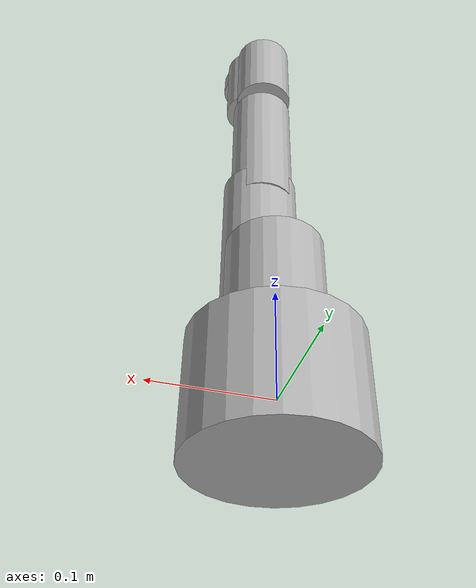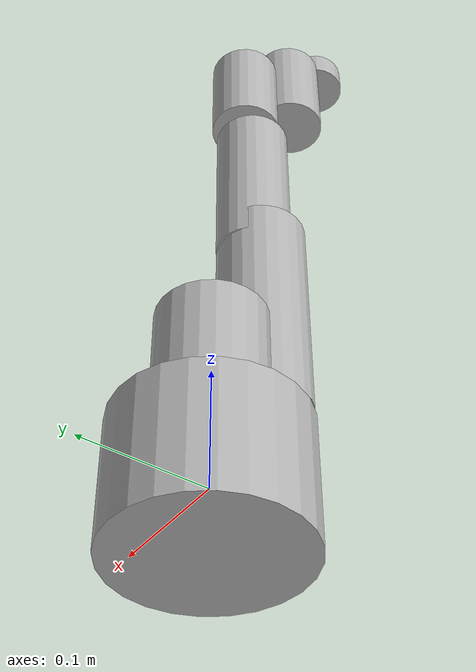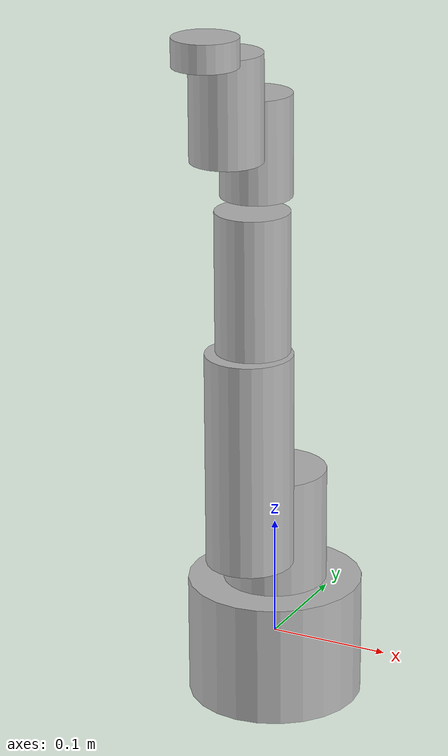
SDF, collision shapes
<sdf version='1.7'>
  <model name='firefighter'>
    <link name='base'>
      <inertial>
        <pose>0 0 0 0 -0 0</pose>
        <mass>1</mass>
        <inertia>
          <ixx>1</ixx>
          <ixy>0</ixy>
          <ixz>0</ixz>
          <iyy>1</iyy>
          <iyz>0</iyz>
          <izz>1</izz>
        </inertia>
      </inertial>
      <collision name='base_collision'>
        <pose>0 0 0 0 -0 1.5708</pose>
        <geometry>
          <cylinder>
            <length>0.102</length>
            <radius>0.0725</radius>
          </cylinder>
        </geometry>
      </collision>
      <visual name='base_visual'>
        <pose>0 0 0 0 -0 1.5708</pose>
        <geometry>
          <mesh>
            <scale>1 1 1</scale>
            <uri>model://mycobot_description/urdf/mycobot_320_pi_2022/base.dae</uri>
          </mesh>
        </geometry>
      </visual>
    </link>
    <joint name='joint2_to_joint1' type='revolute'>
      <pose relative_to='base'>0 0 0.173 0 -0 0</pose>
      <parent>base</parent>
      <child>link1</child>
      <axis>
        <xyz>0 0 1</xyz>
        <limit>
          <lower>-2.96</lower>
          <upper>2.96</upper>
          <effort>1000</effort>
          <velocity>0</velocity>
        </limit>
        <dynamics>
          <spring_reference>0</spring_reference>
          <spring_stiffness>0</spring_stiffness>
        </dynamics>
      </axis>
    </joint>
    <link name='link1'>
      <pose relative_to='joint2_to_joint1'>0 0 0 0 -0 0</pose>
      <inertial>
        <pose>0 0 0 0 -0 0</pose>
        <mass>1</mass>
        <inertia>
          <ixx>1</ixx>
          <ixy>0</ixy>
          <ixz>0</ixz>
          <iyy>1</iyy>
          <iyz>0</iyz>
          <izz>1</izz>
        </inertia>
      </inertial>
      <collision name='link1_collision'>
        <pose>0 0 -0.078 0 -0 1.5708</pose>
        <geometry>
          <cylinder>
            <length>0.106</length>
            <radius>0.043</radius>
          </cylinder>
        </geometry>
      </collision>
      <visual name='link1_visual'>
        <pose>0 0 -0.078 0 -0 1.5708</pose>
        <geometry>
          <mesh>
            <scale>1 1 1</scale>
            <uri>model://mycobot_description/urdf/mycobot_320_pi_2022/link1.dae</uri>
          </mesh>
        </geometry>
      </visual>
    </link>
    <joint name='joint3_to_joint2' type='revolute'>
      <pose relative_to='link1'>0 -0.086 0 -3.14159 -1.57079 -1.57079</pose>
      <parent>link1</parent>
      <child>link2</child>
      <axis>
        <xyz>0 0 1</xyz>
        <limit>
          <lower>-2.79</lower>
          <upper>2.79</upper>
          <effort>1000</effort>
          <velocity>0</velocity>
        </limit>
        <dynamics>
          <spring_reference>0</spring_reference>
          <spring_stiffness>0</spring_stiffness>
        </dynamics>
      </axis>
    </joint>
    <link name='link2'>
      <pose relative_to='joint3_to_joint2'>0 0 0 0 -0 0</pose>
      <inertial>
        <pose>0 0 0 0 -0 0</pose>
        <mass>1</mass>
        <inertia>
          <ixx>1</ixx>
          <ixy>0</ixy>
          <ixz>0</ixz>
          <iyy>1</iyy>
          <iyz>0</iyz>
          <izz>1</izz>
        </inertia>
      </inertial>
      <collision name='link2_collision'>
        <pose>0 0 -0.04 0 1.5708 0</pose>
        <geometry>
          <cylinder>
            <length>0.18</length>
            <radius>0.036</radius>
          </cylinder>
        </geometry>
      </collision>
      <visual name='link2_visual'>
        <pose>0 0 -0.04 0 1.5708 0</pose>
        <geometry>
          <mesh>
            <scale>1 1 1</scale>
            <uri>model://mycobot_description/urdf/mycobot_320_pi_2022/link2.dae</uri>
          </mesh>
        </geometry>
      </visual>
    </link>
    <joint name='joint4_to_joint3' type='revolute'>
      <pose relative_to='link2'>0.13635 0 -0.086 0 -0 0</pose>
      <parent>link2</parent>
      <child>link3</child>
      <axis>
        <xyz>0 0 1</xyz>
        <limit>
          <lower>-2.79</lower>
          <upper>2.79</upper>
          <effort>1000</effort>
          <velocity>0</velocity>
        </limit>
        <dynamics>
          <spring_reference>0</spring_reference>
          <spring_stiffness>0</spring_stiffness>
        </dynamics>
      </axis>
    </joint>
    <link name='link3'>
      <pose relative_to='joint4_to_joint3'>0 0 0 0 -0 0</pose>
      <inertial>
        <pose>0 0 0 0 -0 0</pose>
        <mass>1</mass>
        <inertia>
          <ixx>1</ixx>
          <ixy>0</ixy>
          <ixz>0</ixz>
          <iyy>1</iyy>
          <iyz>0</iyz>
          <izz>1</izz>
        </inertia>
      </inertial>
      <collision name='link3_collision'>
        <pose>0 0 0.039 -4e-06 1.5708 0</pose>
        <geometry>
          <cylinder>
            <length>0.14</length>
            <radius>0.0305</radius>
          </cylinder>
        </geometry>
      </collision>
      <visual name='link3_visual'>
        <pose>0 0 0.039 -4e-06 1.5708 0</pose>
        <geometry>
          <mesh>
            <scale>1 1 1</scale>
            <uri>model://mycobot_description/urdf/mycobot_320_pi_2022/link3.dae</uri>
          </mesh>
        </geometry>
      </visual>
    </link>
    <joint name='joint5_to_joint4' type='revolute'>
      <pose relative_to='link3'>0.1195 0 0.082 0 -0 1.5708</pose>
      <parent>link3</parent>
      <child>link4</child>
      <axis>
        <xyz>0 0 1</xyz>
        <limit>
          <lower>-2.79</lower>
          <upper>2.79</upper>
          <effort>1000</effort>
          <velocity>0</velocity>
        </limit>
        <dynamics>
          <spring_reference>0</spring_reference>
          <spring_stiffness>0</spring_stiffness>
        </dynamics>
      </axis>
    </joint>
    <link name='link4'>
      <pose relative_to='joint5_to_joint4'>0 0 0 0 -0 0</pose>
      <inertial>
        <pose>0 0 0 0 -0 0</pose>
        <mass>1</mass>
        <inertia>
          <ixx>1</ixx>
          <ixy>0</ixy>
          <ixz>0</ixz>
          <iyy>1</iyy>
          <iyz>0</iyz>
          <izz>1</izz>
        </inertia>
      </inertial>
      <collision name='link4_collision'>
        <pose>0 -0.0024 -0.05 1.5708 1.5708 0</pose>
        <geometry>
          <cylinder>
            <length>0.083</length>
            <radius>0.029</radius>
          </cylinder>
        </geometry>
      </collision>
      <visual name='link4_visual'>
        <pose>0 -0.0024 -0.05 1.5708 1.5708 0</pose>
        <geometry>
          <mesh>
            <scale>1 1 1</scale>
            <uri>model://mycobot_description/urdf/mycobot_320_pi_2022/link4.dae</uri>
          </mesh>
        </geometry>
      </visual>
    </link>
    <joint name='joint6_to_joint5' type='revolute'>
      <pose relative_to='link4'>0 -0.09415 0 1.5708 -0 0</pose>
      <parent>link4</parent>
      <child>link5</child>
      <axis>
        <xyz>0 0 1</xyz>
        <limit>
          <lower>-2.96</lower>
          <upper>2.96</upper>
          <effort>1000</effort>
          <velocity>0</velocity>
        </limit>
        <dynamics>
          <spring_reference>0</spring_reference>
          <spring_stiffness>0</spring_stiffness>
        </dynamics>
      </axis>
    </joint>
    <link name='link5'>
      <pose relative_to='joint6_to_joint5'>0 0 0 0 -0 0</pose>
      <inertial>
        <pose>0 0 0 0 -0 0</pose>
        <mass>1</mass>
        <inertia>
          <ixx>1</ixx>
          <ixy>0</ixy>
          <ixz>0</ixz>
          <iyy>1</iyy>
          <iyz>0</iyz>
          <izz>1</izz>
        </inertia>
      </inertial>
      <collision name='link5_collision'>
        <pose>0 0 -0.05 0 0 -1.5708</pose>
        <geometry>
          <cylinder>
            <length>0.0849</length>
            <radius>0.029</radius>
          </cylinder>
        </geometry>
      </collision>
      <visual name='link5_visual'>
        <pose>0 0 -0.05 0 0 -1.5708</pose>
        <geometry>
          <mesh>
            <scale>1 1 1</scale>
            <uri>model://mycobot_description/urdf/mycobot_320_pi_2022/link5.dae</uri>
          </mesh>
        </geometry>
      </visual>
    </link>
    <joint name='joint6output_to_joint6' type='revolute'>
      <pose relative_to='link5'>0 0.055 0 -1.5708 0 0</pose>
      <parent>link5</parent>
      <child>link6</child>
      <axis>
        <xyz>0 0 1</xyz>
        <limit>
          <lower>-3.05</lower>
          <upper>3.05</upper>
          <effort>1000</effort>
          <velocity>0</velocity>
        </limit>
        <dynamics>
          <spring_reference>0</spring_reference>
          <spring_stiffness>0</spring_stiffness>
        </dynamics>
      </axis>
    </joint>
    <link name='link6'>
      <pose relative_to='joint6output_to_joint6'>0 0 0 0 -0 0</pose>
      <inertial>
        <pose>0 0 0 0 -0 0</pose>
        <mass>1</mass>
        <inertia>
          <ixx>1</ixx>
          <ixy>0</ixy>
          <ixz>0</ixz>
          <iyy>1</iyy>
          <iyz>0</iyz>
          <izz>1</izz>
        </inertia>
      </inertial>
      <collision name='link6_collision'>
        <pose>0 0 -0.022 1.5708 1.5708 0</pose>
        <geometry>
          <cylinder>
            <length>0.0225</length>
            <radius>0.026</radius>
          </cylinder>
        </geometry>
      </collision>
      <visual name='link6_visual'>
        <pose>0 0 -0.022 1.5708 1.5708 0</pose>
        <geometry>
          <mesh>
            <scale>1 1 1</scale>
            <uri>model://mycobot_description/urdf/mycobot_320_pi_2022/link6.dae</uri>
          </mesh>
        </geometry>
      </visual>
    </link>
  </model>
</sdf>
